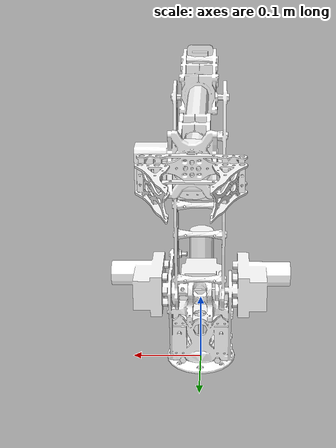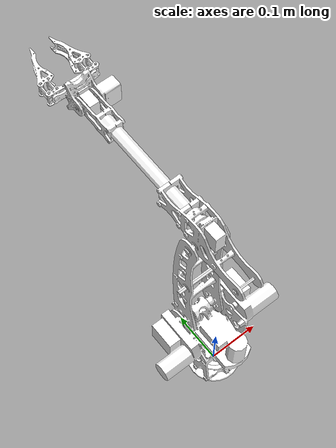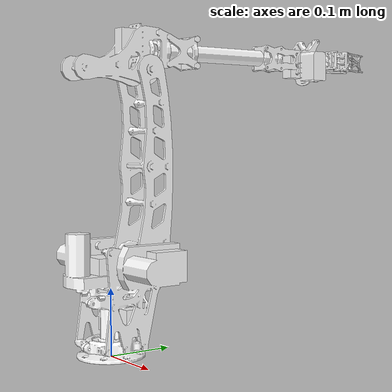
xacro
<?xml version="1.0"?>
<robot xmlns:xacro="http://www.ros.org/wiki/xacro" name="test_robot">
<!--********************************const param***********************************-->
<xacro:property name="M_PI"   value="3.141592654"/>
<xacro:property name="M_PI_2" value="1.570796327"/>
<!--***********************************link***************************************-->
  <link name="arm_link">
      <visual>
        <geometry>
         <mesh filename="package://x_description/arm/meshes/visual/mounting_base.stl" scale="0.0001 0.0001 0.0001"/>
         </geometry>
        <material name="white">
        <color rgba="1 1 1 1"/>
      </material>
       <origin rpy="${M_PI_2} 0 0" xyz="0 0 0"/>

    </visual>
    <collision>
       <geometry>
         <mesh filename="package://x_description/arm/meshes/collision/mounting_base.stl" scale="0.0001 0.0001 0.0001"/>
         </geometry>
       <origin rpy="${M_PI_2} 0 0" xyz="0 0 0"/>
    </collision>
  </link>

  <link name="arm_rota_link">
      <visual>
        <geometry>
          <mesh filename="package://x_description/arm/meshes/visual/rotating_base.stl" scale="0.0001 0.0001 0.0001"/>
        </geometry>
        <material name="white"/>
        <origin rpy="${M_PI_2} 0 ${M_PI}" xyz="0 0 0"/>
      </visual>
      <collision>
        <geometry>
          <mesh filename="package://x_description/arm/meshes/collision/rotating_base.stl" scale="0.0001 0.0001 0.0001"/>
        </geometry>
        <origin rpy="${M_PI_2} 0 ${M_PI}" xyz="0 0 0"/>
      </collision>

  </link>

  <link name="arm_a_link">
    <visual>
       <geometry>
          <mesh filename="package://x_description/arm/meshes/visual/arm_a.stl" scale="0.0001 0.0001 0.0001"/>
       </geometry>
      <material name="white"/>
       <origin rpy="${M_PI_2} 0 ${M_PI}" xyz="0 0 0"/>
    </visual>
    <collision>
       <geometry>
          <mesh filename="package://x_description/arm/meshes/collision/arm_a.stl" scale="0.0001 0.0001 0.0001"/>
       </geometry>
       <origin rpy="${M_PI_2} 0 ${M_PI}" xyz="0 0 0"/>
    </collision>
  </link>

  <link name="passive_a_link">
  </link>

  <link name="arm_b_link">
    <visual>
       <geometry>
         <mesh filename="package://x_description/arm/meshes/visual/arm_b.stl" scale="0.0001 0.0001 0.0001"/>
       </geometry>
      <material name="white"/>
       <origin rpy="${M_PI_2} 0 ${M_PI}" xyz="0 0 0"/>
     </visual>
     <collision>
       <geometry>
         <mesh filename="package://x_description/arm/meshes/collision/arm_b.stl" scale="0.0001 0.0001 0.0001"/>
       </geometry>
       <origin rpy="${M_PI_2} 0 ${M_PI}" xyz="0 0 0"/>
     </collision>
  </link>

  <link name="arm_c_link">
    <visual>
       <geometry>
         <mesh filename="package://x_description/arm/meshes/visual/arm_c.stl" scale="0.0001 0.0001 0.0001"/>
       </geometry>
       <origin rpy="0 ${M_PI} 0" xyz="0 0 0"/>
	 <material name="white"/>
    </visual>
    <collision>
              <geometry>
         <mesh filename="package://x_description/arm/meshes/collision/arm_c.stl" scale="0.0001 0.0001 0.0001"/>
       </geometry>
       <origin rpy="0 ${M_PI} 0" xyz="0 0 0"/>

    </collision>
  </link>

  <link name="arm_d_link">
    <visual>
       <geometry>
          <mesh filename="package://x_description/arm/meshes/visual/arm_d.stl" scale="0.0001 0.0001 0.0001"/>
       </geometry>
       <origin rpy="${M_PI/2} ${M_PI} 0" xyz="0 0 0"/>
<material name="white"/>
    </visual>
    <collision>
       <geometry>
          <mesh filename="package://x_description/arm/meshes/collision/arm_d.stl" scale="0.0001 0.0001 0.0001"/>
       </geometry>
       <origin rpy="${M_PI/2} ${M_PI} 0" xyz="0 0 0"/>
    </collision>
  </link>

  <link name="arm_hand_link">
    <visual>
       <geometry>
          <mesh filename="package://x_description/arm/meshes/visual/hand.stl" scale="0.0001 0.0001 0.0001"/>
       </geometry>
       <origin rpy="0 0 0" xyz="0 0 0"/>
<material name="white"/>
    </visual>
    <collision>
       <geometry>
          <mesh filename="package://x_description/arm/meshes/collision/hand.stl" scale="0.0001 0.0001 0.0001"/>
       </geometry>
       <origin rpy="0 0 0" xyz="0 0 0"/>
    </collision>
  </link>

  <link name="arm_finger_a_link">
    <visual>
       <geometry>
          <mesh filename="package://x_description/arm/meshes/visual/finger.stl" scale="0.0001 0.0001 0.0001"/>
       </geometry>
       <origin rpy="0 ${M_PI} 0" xyz="0 0.1 0"/>
<material name="white"/>
    </visual>
    <collision>
       <geometry>
          <mesh filename="package://x_description/arm/meshes/collision/finger.stl" scale="0.0001 0.0001 0.0001"/>
       </geometry>
       <origin rpy="0 ${M_PI} 0" xyz="0 0.1 0"/>
    </collision>
  </link>

  <link name="arm_finger_b_link">
    <visual>
       <geometry>
          <mesh filename="package://x_description/arm/meshes/visual/finger.stl" scale="0.0001 0.0001 0.0001"/>
       </geometry>
       <origin rpy="0 0 0" xyz="0 0.1 0"/>
<material name="white"/>
    </visual>
    <collision>
        <geometry>
          <mesh filename="package://x_description/arm/meshes/collision/finger.stl" scale="0.0001 0.0001 0.0001"/>
       </geometry>
       <origin rpy="0 0 0" xyz="0 0.1 0"/>
    </collision>
  </link>

<!--***********************************transmission***************************************-->

<!--***********************************joint***************************************-->

  <joint name="joint_arm_a_1" type="revolute">
    <parent link="arm_link"/>
    <child link="arm_rota_link"/>
    <origin  rpy="0 0 0" xyz="0 0 0.0"/>
    <limit effort="1000.0" lower="-${M_PI_2}" upper="${M_PI_2}" velocity="0.5"/>
    <axis xyz="0 0 1"/>
  </joint>

  <joint name="joint_arm_a_2" type="revolute">
    <parent link="arm_rota_link"/>
    <child link="arm_a_link"/>
    <origin  rpy="0 0 0" xyz="0 0.05 0.137"/>
    <limit effort="1000.0" lower="-${M_PI_2}" upper="1.1" velocity="0.5"/>
  </joint>

  <joint name="passive_joint_a" type="revolute">
    <parent link="arm_a_link"/>
    <child link="passive_a_link"/>
    <origin  xyz="0 0 0.28"/>
    <axis xyz="1 0 0"/>
    <mimic joint="joint_arm_a_2" multiplier="-1.0" offset="0.0"/>
    <limit effort="1000.0" lower="-10.0" upper="10.0" velocity="1.0"/>
  </joint>

  <joint name="joint_arm_a_3" type="revolute">
    <parent link="passive_a_link"/>
    <child link="arm_b_link"/>
    <origin  xyz="0 0 0"/>
    <axis xyz="1 0 0"/>
    <limit effort="1000.0" lower="-2.2" upper="0.51" velocity="0.5"/>
  </joint>

  <joint name="joint_arm_b_1" type="revolute">
    <parent link="arm_b_link"/>
    <child link="arm_c_link"/>
     <origin  xyz="0 0.026 0.03"/>
     <axis xyz="0 1 0"/>
    <limit effort="1000.0" lower="-${M_PI_2}" upper="${M_PI_2}" velocity="0.5"/>
  </joint>

  <joint name="joint_arm_b_2" type="revolute">
    <parent link="arm_c_link"/>
    <child link="arm_d_link"/>
     <origin  xyz="0 0.2815 0"/>
     <axis xyz="1 0 0"/>
    <limit effort="1000.0" lower="-${M_PI_2}" upper="${M_PI_2}" velocity="0.5"/>
  </joint>

  <joint name="joint_arm_b_3" type="revolute">
    <parent link="arm_d_link"/>
    <child link="arm_hand_link"/>
     <origin  xyz="0 0.034 0"/>
     <axis xyz="0 1 0"/>
    <limit effort="1000.0" lower="-${M_PI_2}" upper="${M_PI_2}" velocity="0.5"/>
  </joint>

 <joint name="joint_finger_a" type="revolute">
    <parent link="arm_hand_link"/>
    <child link="arm_finger_a_link"/>
     <origin  xyz="-0.04 -0.09 0"/>
     <axis xyz="0 0 -1"/>
    <limit effort="1000.0" lower="-0.15" upper="0.11" velocity="0.5"/>
  </joint>

 <joint name="joint_finger_b" type="revolute">
    <parent link="arm_hand_link"/>
    <child link="arm_finger_b_link"/>
     <origin  xyz="0.04 -0.09 0"/>
     <axis xyz="0 0 1"/>
	<mimic joint="joint_finger_a" multiplier="1.0" offset="0.0"/>
    <limit effort="1000.0" lower="-0.15" upper="0.11" velocity="0.5"/>
  </joint>

</robot>
